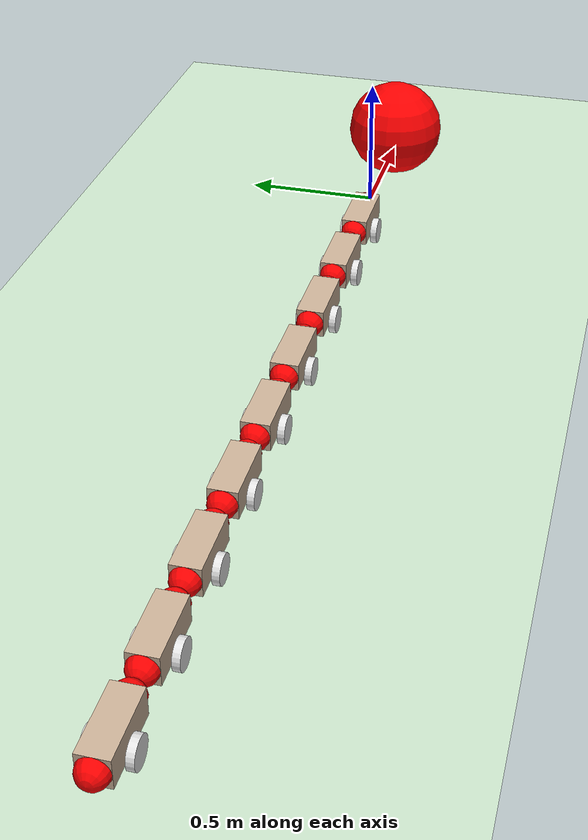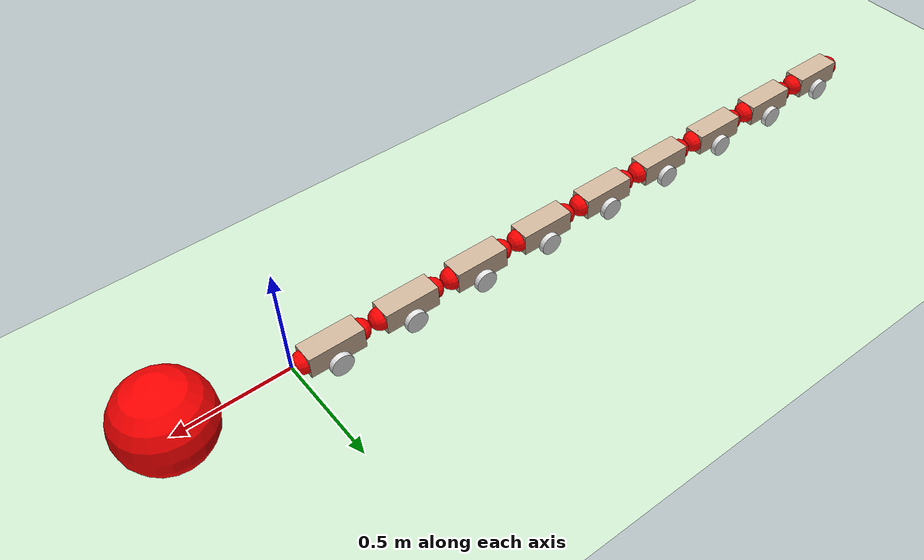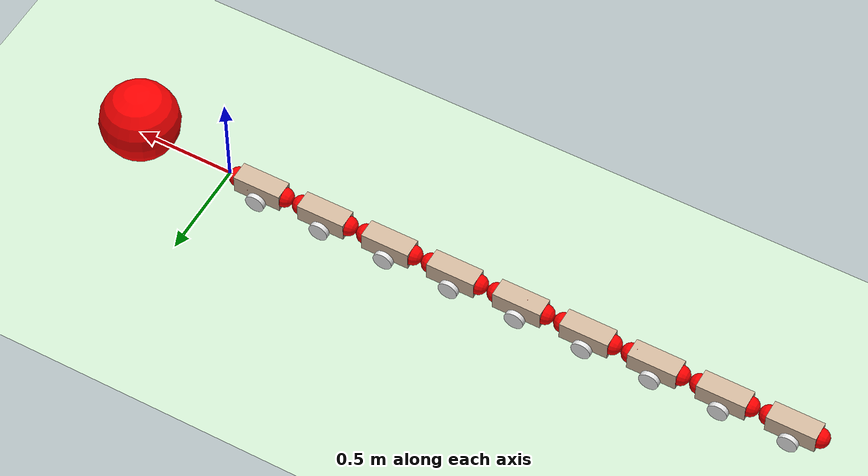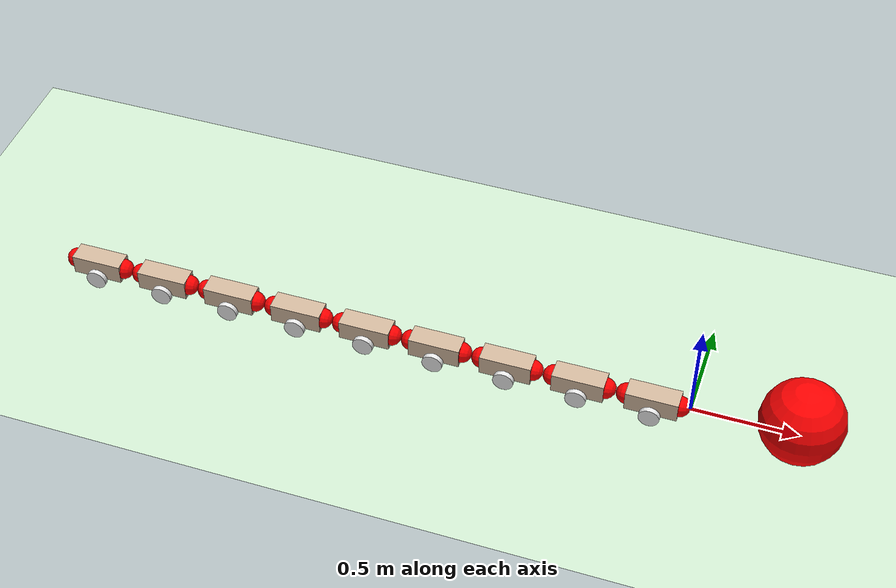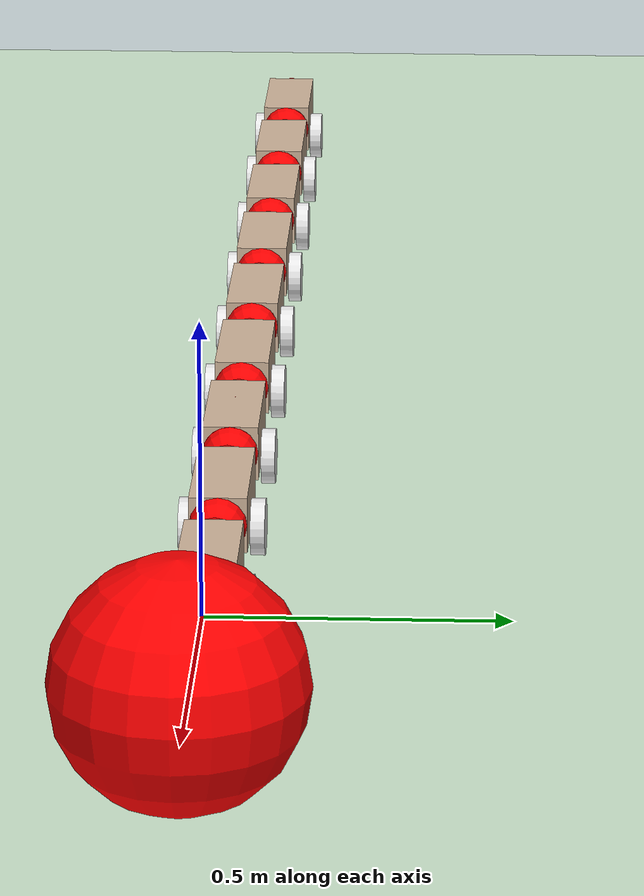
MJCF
<mujoco model="planar_snake_car_servo">
    <compiler angle="degree" coordinate="local" inertiafromgeom="true"/>

    <!-- changed timestep from 0.01 to 0.05 (0.0125*4?)   Simulation time step in seconds. 50ms = 0.05s-->
    <!-- RK4 to euler -->
    <option integrator="Euler" timestep="0.0125">
        <flag energy="enable" clampctrl="enable"/>

    </option>

    <size nconmax="1000"/>
    <!--
    Units Joints
    hinge: angular velocity (rad/s)
    hinge: angle (rad)
    slider: velocity (m/s)
    slider: position (m)

    Units Actuators
    hinge: torque (N m)
    -->

    <!--  ================= defaults ================= /-->
    <default>

        <!-- for power effizient experiment-->
        <geom conaffinity="0" condim="3" friction="1 0.05 0.00001" margin="0.01" density="600" />

        <!-- for Target Tracking experiment-->

        <!-- friction="1 0.5 0.0001"
        The internal default of 1000 is the density of water in SI units.
        -->
        <!-- friction="2 0.5 0.0001" -->

        <joint armature='0.001' damping="0" frictionloss="0.001" />
        <!-- armature='1' damping="1" -->

        <default class="wheel">
            <joint axis="0 1 0" type="hinge" damping="0.2"/>
            <!-- size 0.1  friction 1 0.005 0.0001-->
            <!-- friction="1.25 1.0 0.0001"-->
            <geom type="cylinder" fromto="0 0 0  0 0.025 0" size="0.05" material="geom" rgba=".9 .9 .9 1" friction="1.25 1.0 0.0001"/>
        </default>

        <default class="car">
            <geom material="geom" rgba="0.8 0.7 .6 1" />
            <joint pos="0 0 0" axis="0 0 1" type="hinge" limited="true" range="-90 90"/>
        </default>

        <position ctrllimited="true" ctrlrange="-1.5 1.5" forcelimited="true" forcerange="-20.0 20.0" kp="20" gear="1"/>

    </default>

    <asset>
        <texture builtin="gradient" height="100" rgb1="1 1 1" rgb2="0 0 0" type="skybox" width="100"/>
        <texture builtin="flat" height="1278" mark="cross" markrgb="1 1 1" name="texgeom" random="0.01"
                 rgb1="0.8 0.6 0.4" rgb2="0.8 0.6 0.4" type="cube" width="127"/>
        <texture name="texplane" type="2d" builtin="checker" rgb1=".2 .3 .4" rgb2=".1 0.15 0.2" width="512" height="512" mark="cross" markrgb=".8 .8 .8"/>
        <material name="MatPlane" reflectance="0.5" shininess="1" specular="1" texrepeat="80 80" texture="texplane"/>
        <!-- 80 80 is one le -->
        <material name="geom" texture="texgeom" texuniform="true"/>

        <material name="matplane" reflectance="0.3" texture="texplane" texrepeat="1 1" texuniform="true"/>

        <!-- My Textures -->
        <material name="MatTarget" rgba="1 0 0 1" reflectance="0.05" shininess="0.1" specular="0.1"/>
    </asset>

    <visual>
        <map znear="0.0625"  />
        <quality shadowsize="4096"/>

    </visual>

    <worldbody>
        <light cutoff="100" diffuse="1 1 1" dir="-0 0 -1.3" directional="true" exponent="1" pos="0 0 1.3"
               specular=".1 .1 .1"/>
        <geom name="floor" size="80 80 10" material="MatPlane" conaffinity="1" condim="3" pos="0 0 -0.1" rgba="0.8 0.9 0.8 1" type="plane"/>

        <!--  ================= Sun ================= /-->

        <!--  ================= Target ================= /-->
        <body name="target_ball" pos="0 0 0.1">
            <joint axis="1 0 0" name="target_slider_x" type="slide"/>
            <joint axis="0 1 0" name="target_slider_y" type="slide"/>
            <geom name="target_ball_geom" type="sphere" pos="0.5 0 0" size="0.2" material="MatTarget"/>
            <camera name="track_ball" mode="trackcom" pos="0 -4 6" euler="30 0 0"/>
            <camera name="track_ball2" mode="targetbodycom" pos="0 0 1" zaxis="0 0 90" />
        </body>

        <body name="car1" pos="0 0 0.0">

            <joint axis="1 0 0" name="slider_x" type="slide"/>
            <joint axis="0 1 0" name="slider_y" type="slide"/>
            <joint axis="0 0 1" name="slider_z" type="slide"/>

            <joint pos="0 0 0" axis="1 0 0" name="hinge_x" type="hinge"/>
            <joint pos="0 0 0" axis="0 1 0" name="hinge_y" type="hinge"/>
            <joint pos="0 0 0" axis="0 0 1" name="hinge_z" type="hinge"/>

            <body pos="-0.175 0.05 -0.05" childclass="wheel"><joint name="joint_wheel_l_00"/><geom/></body>
            <geom name="head" pos="-0.175 0 0" size="0.125 0.05 0.05" type="box" material="geom" rgba="0.8 0.7 .6 1"/>
            <geom fromto="-0.30 0 0  -0.05 0 0" size="0.05" type="capsule" rgba="1.0 0.0 0.0 1"/>
            <body pos="-0.175 -0.075 -0.05" childclass="wheel"><joint name="joint_wheel_r_00"/><geom/></body>

            <site name='site_head' pos='-0.175 0 0.0' type='box'  size='.01 .01 .01'/>

            <camera name="head" mode="fixed" pos="0 0 0.025" fovy="90" euler="90 -90 0"/>
            <camera name="track_snake1" mode="trackcom" pos="-1.4 -1.25 2.25" euler="30 0 0"/>
            <camera name="track_snake2" mode="trackcom" pos="-1.5 0 3" euler="0 0 0"/>
            <camera name="track_snake3" mode="trackcom" pos="0 -4 6" euler="30 0 0"/>
            <camera name="track_snake31" mode="trackcom" pos="1.25 -3.75 4.5" euler="30 0 0"/>
            <camera name="track_snake32" mode="trackcom" pos="-4.0 0.0 0.75" euler="00 -90 00"/>
            <camera name="track_snake33" mode="trackcom" pos="-4.5 0.0 1.75" xyaxes="0.0 -1 0.0 0.6 0 1 "/>
            <camera name="track_snake4" mode="trackcom" pos="0 0 5" euler="0 0 0"/>

            <body name="car2" pos="-0.35 0 0" childclass="car">
                <joint name="joint01"/>
                <body pos="-0.175 0.05 -0.05" childclass="wheel"><joint name="joint_wheel_l_01"/><geom/></body>
                <geom name="car2_geom" pos="-0.175 0 0" size="0.125 0.05 0.05" type="box" material="geom" rgba="0.8 0.7 .6 1"/>
                <geom fromto="-0.30 0 0 -0.05 0 0" size="0.05" type="capsule" rgba="1.0 0.0 0.0 1"/>
                <body pos="-0.175 -0.075 -0.05" childclass="wheel"><joint name="joint_wheel_r_01"/><geom/></body>

                <body name="car3" pos="-0.35 0 0" childclass="car">
                    <joint name="joint02"/>
                    <body pos="-0.175 0.05 -0.05" childclass="wheel"><joint name="joint_wheel_l_02"/><geom/></body>
                    <geom name="car3_geom" pos="-0.175 0 0" size="0.125 0.05 0.05" type="box" material="geom" rgba="0.8 0.7 .6 1"/>
                    <geom fromto="-0.30 0 0  -0.05 0 0" size="0.05" type="capsule" rgba="1.0 0.0 0.0 1"/>
                    <body pos="-0.175 -0.075 -0.05" childclass="wheel"><joint name="joint_wheel_r_02"/><geom/></body>

                    <body name="car4" pos="-0.35 0 0" childclass="car">
                        <joint name="joint03"/>
                        <body pos="-0.175 0.05 -0.05" childclass="wheel"><joint name="joint_wheel_l_03"/><geom/></body>
                        <geom name="car4_geom" pos="-0.175 0 0" size="0.125 0.05 0.05" type="box" material="geom" rgba="0.8 0.7 .6 1"/>
                        <geom fromto="-0.30 0 0  -0.05 0 0" size="0.05" type="capsule" rgba="1.0 0.0 0.0 1"/>
                        <body pos="-0.175 -0.075 -0.05" childclass="wheel"><joint name="joint_wheel_r_03"/><geom/></body>

                        <body name="car5" pos="-0.35 0 0" childclass="car">
                            <joint name="joint04"/>
                            <body pos="-0.175 0.05 -0.05" childclass="wheel"><joint name="joint_wheel_l_04"/><geom/></body>
                            <geom name="car5_geom" pos="-0.175 0 0" size="0.125 0.05 0.05" type="box" material="geom" rgba="0.8 0.7 .6 1"/>
                            <geom fromto="-0.30 0 0  -0.05 0 0" size="0.05" type="capsule" rgba="1.0 0.0 0.0 1"/>
                            <body pos="-0.175 -0.075 -0.05" childclass="wheel"><joint name="joint_wheel_r_04"/><geom/></body>

                            <body name="car6" pos="-0.35 0 0" childclass="car">
                                <joint name="joint05"/>
                                <body pos="-0.175 0.05 -0.05" childclass="wheel"><joint name="joint_wheel_l_05"/><geom/></body>
                                <geom name="car6_geom" pos="-0.175 0 0" size="0.125 0.05 0.05" type="box" material="geom" rgba="0.8 0.7 .6 1"/>
                                <geom fromto="-0.30 0 0  -0.05 0 0" size="0.05" type="capsule" rgba="1.0 0.0 0.0 1"/>
                                <body pos="-0.175 -0.075 -0.05" childclass="wheel"><joint name="joint_wheel_r_05"/><geom/></body>

                                <body name="car7" pos="-0.35 0 0" childclass="car">
                                    <joint name="joint06"/>
                                    <body pos="-0.175 0.05 -0.05" childclass="wheel"><joint name="joint_wheel_l_06"/><geom/></body>
                                    <geom name="car7_geom" pos="-0.175 0 0" size="0.125 0.05 0.05" type="box" material="geom" rgba="0.8 0.7 .6 1"/>
                                    <geom fromto="-0.30 0 0  -0.05 0 0" size="0.05" type="capsule" rgba="1.0 0.0 0.0 1"/>
                                    <body pos="-0.175 -0.075 -0.05" childclass="wheel"><joint name="joint_wheel_r_06"/><geom/></body>

                                    <body name="car8" pos="-0.35 0 0" childclass="car">
                                        <joint name="joint07"/>
                                        <body pos="-0.175 0.05 -0.05" childclass="wheel"><joint name="joint_wheel_l_07"/><geom/></body>
                                        <geom name="car8_geom" pos="-0.175 0 0" size="0.125 0.05 0.05" type="box" material="geom" rgba="0.8 0.7 .6 1"/>
                                        <geom fromto="-0.30 0 0  -0.05 0 0" size="0.05" type="capsule" rgba="1.0 0.0 0.0 1"/>
                                        <body pos="-0.175 -0.075 -0.05" childclass="wheel"><joint name="joint_wheel_r_07"/><geom/></body>

                                        <body name="car9" pos="-0.35 0 0" childclass="car">
                                            <joint name="joint08"/>
                                            <body pos="-0.175 0.05 -0.05" childclass="wheel"><joint name="joint_wheel_l_08"/><geom/></body>
                                            <geom name="car9_geom" pos="-0.175 0 0" size="0.125 0.05 0.05" type="box" material="geom" rgba="0.8 0.7 .6 1"/>
                                            <geom fromto="-0.30 0 0  -0.05 0 0" size="0.05" type="capsule" rgba="1.0 0.0 0.0 1"/>
                                            <body pos="-0.175 -0.075 -0.05" childclass="wheel"><joint name="joint_wheel_r_08"/><geom/></body>

                                        </body>
                                    </body>
                                </body>
                            </body>
                        </body>
                    </body>
                </body>
            </body>
        </body>
    </worldbody>
    <actuator >
        <position name="actuator_joint01" joint="joint01"/>
        <position name="actuator_joint02" joint="joint02"/>
        <position name="actuator_joint03" joint="joint03"/>
        <position name="actuator_joint04" joint="joint04"/>
        <position name="actuator_joint05" joint="joint05"/>
        <position name="actuator_joint06" joint="joint06"/>
        <position name="actuator_joint07" joint="joint07"/>
        <position name="actuator_joint08" joint="joint08"/>

    </actuator>
    <sensor>

        <actuatorfrc name="sensor_actuatorfrc_joint01" actuator="actuator_joint01" />
        <actuatorfrc name="sensor_actuatorfrc_joint02" actuator="actuator_joint02" />
        <actuatorfrc name="sensor_actuatorfrc_joint03" actuator="actuator_joint03" />
        <actuatorfrc name="sensor_actuatorfrc_joint04" actuator="actuator_joint04" />
        <actuatorfrc name="sensor_actuatorfrc_joint05" actuator="actuator_joint05" />
        <actuatorfrc name="sensor_actuatorfrc_joint06" actuator="actuator_joint06" />
        <actuatorfrc name="sensor_actuatorfrc_joint07" actuator="actuator_joint07" />
        <actuatorfrc name="sensor_actuatorfrc_joint08" actuator="actuator_joint08" />

        <velocimeter name="sensor_velocimeter" site="site_head"/>
        <accelerometer name="sensor_accelerometer" site="site_head"/>

    </sensor>
</mujoco>
